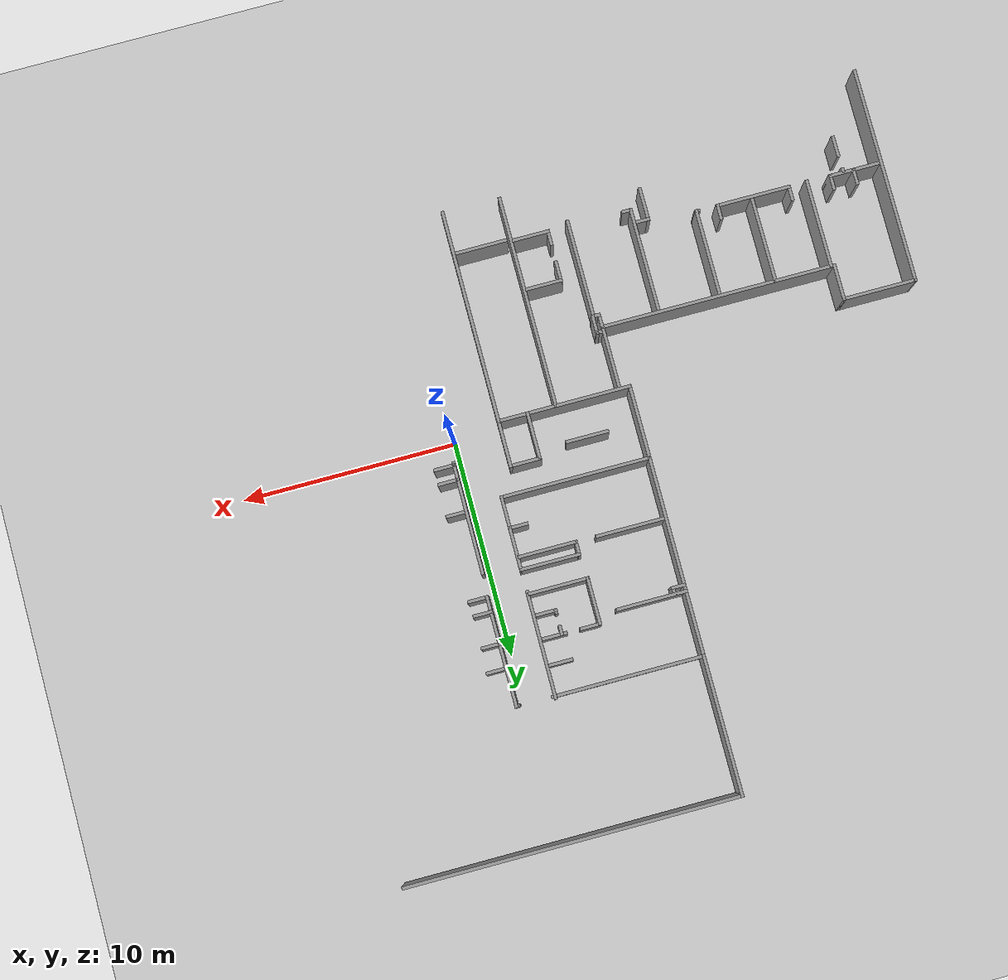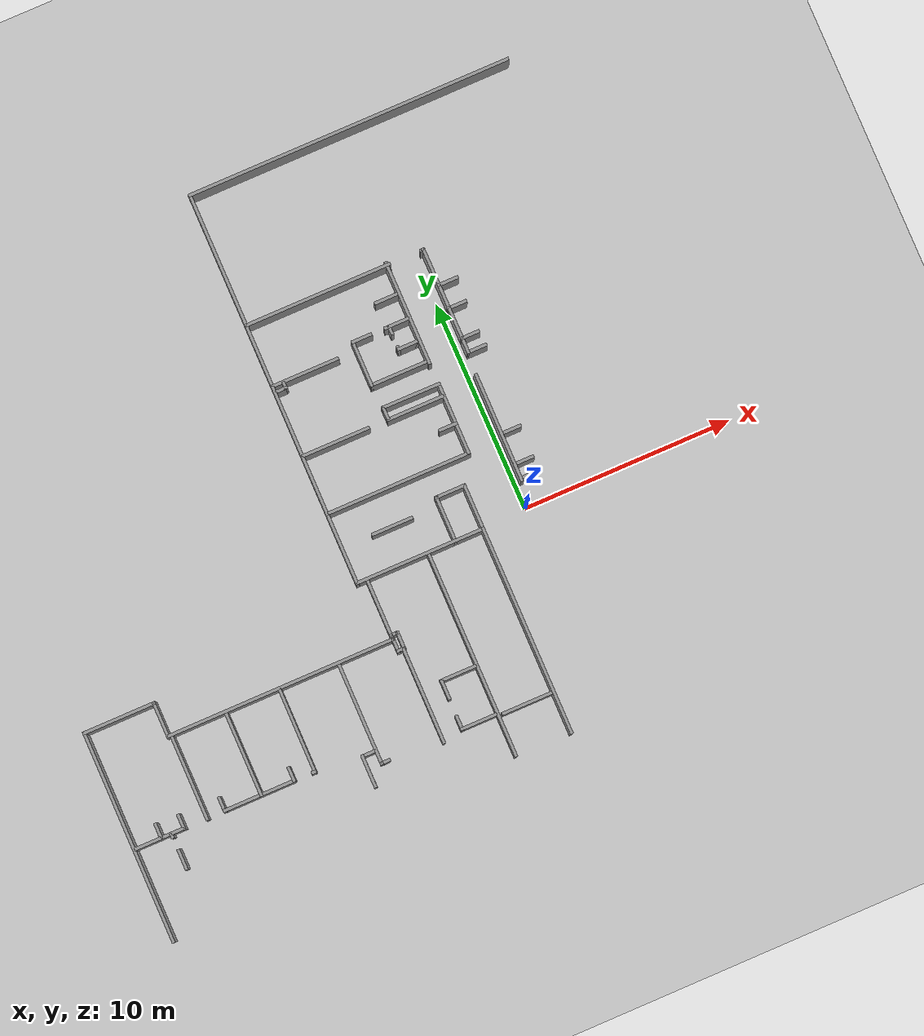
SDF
<sdf version="1.6">
 <world name="default">
  <model name="ground_plane">
   <static>1</static>
   <link name="link">
    <collision name="collision">
     <geometry><plane><normal>0 0 1</normal><size>100 100</size></plane></geometry>
     <surface>
      <contact><collide_bitmask>65535</collide_bitmask></contact>
      <friction><ode><mu>100</mu><mu2>50</mu2></ode></friction>
     </surface>
    </collision>
    <visual name="visual">
     <cast_shadows>0</cast_shadows>
     <geometry><plane><normal>0 0 1</normal><size>100 100</size></plane></geometry>
     <material>
      <script><uri>file://media/materials/scripts/gazebo.material</uri><name>Gazebo/Grey</name></script>
     </material>
    </visual>
   </link>
  </model>
  <model name="harnwell">
   <pose>0.907995 -0.1981 0 0 -0 0</pose>
   <link name="Wall_0">
    <collision name="Wall_0_Collision">
     <geometry><box><size>15.5704 0.15 2.5</size></box></geometry>
     <pose>0 0 1.25 0 -0 0</pose>
    </collision>
    <visual name="Wall_0_Visual">
     <pose>0 0 1.25 0 -0 0</pose>
     <geometry><box><size>15.5704 0.15 2.5</size></box></geometry>
     <material>
      <script><uri>file://media/materials/scripts/gazebo.material</uri><name>Gazebo/Grey</name></script>
      <ambient>1 1 1 1</ambient>
     </material>
     <meta><layer>0</layer></meta>
    </visual>
    <pose>-1.44871 18.8469 0 0 -0 0</pose>
   </link>
   <link name="Wall_10">
    <collision name="Wall_10_Collision">
     <geometry><box><size>4.47203 0.15 2.5</size></box></geometry>
     <pose>0 0 1.25 0 -0 0</pose>
    </collision>
    <visual name="Wall_10_Visual">
     <pose>0 0 1.25 0 -0 0</pose>
     <geometry><box><size>4.47203 0.15 2.5</size></box></geometry>
     <material>
      <script><uri>file://media/materials/scripts/gazebo.material</uri><name>Gazebo/Grey</name></script>
      <ambient>1 1 1 1</ambient>
     </material>
     <meta><layer>0</layer></meta>
    </visual>
    <pose>-0.551724 10.3258 0 0 -0 1.57386</pose>
   </link>
   <link name="Wall_11">
    <collision name="Wall_11_Collision">
     <geometry><box><size>0.25 0.15 2.5</size></box></geometry>
     <pose>0 0 1.25 0 -0 0</pose>
    </collision>
    <visual name="Wall_11_Visual">
     <pose>0 0 1.25 0 -0 0</pose>
     <geometry><box><size>0.25 0.15 2.5</size></box></geometry>
     <material>
      <script><uri>file://media/materials/scripts/gazebo.material</uri><name>Gazebo/Grey</name></script>
      <ambient>1 1 1 1</ambient>
     </material>
     <meta><layer>0</layer></meta>
    </visual>
    <pose>-0.60834 12.4868 0 0 -0 3.14159</pose>
   </link>
   <link name="Wall_110">
    <collision name="Wall_110_Collision">
     <geometry><box><size>1 0.15 2.5</size></box></geometry>
     <pose>0 0 1.25 0 -0 0</pose>
    </collision>
    <visual name="Wall_110_Visual">
     <pose>0 0 1.25 0 -0 0</pose>
     <geometry><box><size>1 0.15 2.5</size></box></geometry>
     <material>
      <script><uri>file://media/materials/scripts/gazebo.material</uri><name>Gazebo/Grey</name></script>
      <ambient>1 1 1 1</ambient>
     </material>
     <meta><layer>0</layer></meta>
    </visual>
    <pose>-0.181677 3.55575 0 0 -0 3.14159</pose>
   </link>
   <link name="Wall_112">
    <collision name="Wall_112_Collision">
     <geometry><box><size>1 0.15 2.5</size></box></geometry>
     <pose>0 0 1.25 0 -0 0</pose>
    </collision>
    <visual name="Wall_112_Visual">
     <pose>0 0 1.25 0 -0 0</pose>
     <geometry><box><size>1 0.15 2.5</size></box></geometry>
     <material>
      <script><uri>file://media/materials/scripts/gazebo.material</uri><name>Gazebo/Grey</name></script>
      <ambient>1 1 1 1</ambient>
     </material>
     <meta><layer>0</layer></meta>
    </visual>
    <pose>-0.199322 2.07356 0 0 -0 3.14159</pose>
   </link>
   <link name="Wall_114">
    <collision name="Wall_114_Collision">
     <geometry><box><size>0.96775 0.15 2.5</size></box></geometry>
     <pose>0 0 1.25 0 -0 0</pose>
    </collision>
    <visual name="Wall_114_Visual">
     <pose>0 0 1.25 0 -0 0</pose>
     <geometry><box><size>0.96775 0.15 2.5</size></box></geometry>
     <material>
      <script><uri>file://media/materials/scripts/gazebo.material</uri><name>Gazebo/Grey</name></script>
      <ambient>1 1 1 1</ambient>
     </material>
     <meta><layer>0</layer></meta>
    </visual>
    <pose>-0.165457 1.39716 0 0 -0 3.14159</pose>
   </link>
   <link name="Wall_12">
    <collision name="Wall_12_Collision">
     <geometry><box><size>0.25 0.15 2.5</size></box></geometry>
     <pose>0 0 1.25 0 -0 0</pose>
    </collision>
    <visual name="Wall_12_Visual">
     <pose>0 0 1.25 0 -0 0</pose>
     <geometry><box><size>0.25 0.15 2.5</size></box></geometry>
     <material>
      <script><uri>file://media/materials/scripts/gazebo.material</uri><name>Gazebo/Grey</name></script>
      <ambient>1 1 1 1</ambient>
     </material>
     <meta><layer>0</layer></meta>
    </visual>
    <pose>-0.60834 12.4868 0 0 -0 0</pose>
   </link>
   <link name="Wall_132">
    <collision name="Wall_132_Collision">
     <geometry><box><size>3.5 0.15 2.5</size></box></geometry>
     <pose>0 0 1.25 0 -0 0</pose>
    </collision>
    <visual name="Wall_132_Visual">
     <pose>0 0 1.25 0 -0 0</pose>
     <geometry><box><size>3.5 0.15 2.5</size></box></geometry>
     <material>
      <script><uri>file://media/materials/scripts/gazebo.material</uri><name>Gazebo/Grey</name></script>
      <ambient>1 1 1 1</ambient>
     </material>
     <meta><layer>0</layer></meta>
    </visual>
    <pose>-9.16586 1.67152 0 0 -0 -1.5708</pose>
   </link>
   <link name="Wall_133">
    <collision name="Wall_133_Collision">
     <geometry><box><size>6.25 0.15 2.5</size></box></geometry>
     <pose>0 0 1.25 0 -0 0</pose>
    </collision>
    <visual name="Wall_133_Visual">
     <pose>0 0 1.25 0 -0 0</pose>
     <geometry><box><size>6.25 0.15 2.5</size></box></geometry>
     <material>
      <script><uri>file://media/materials/scripts/gazebo.material</uri><name>Gazebo/Grey</name></script>
      <ambient>1 1 1 1</ambient>
     </material>
     <meta><layer>0</layer></meta>
    </visual>
    <pose>-6.11586 -0.003478 0 0 -0 0</pose>
   </link>
   <link name="Wall_135">
    <collision name="Wall_135_Collision">
     <geometry><box><size>2.25 0.15 2.5</size></box></geometry>
     <pose>0 0 1.25 0 -0 0</pose>
    </collision>
    <visual name="Wall_135_Visual">
     <pose>0 0 1.25 0 -0 0</pose>
     <geometry><box><size>2.25 0.15 2.5</size></box></geometry>
     <material>
      <script><uri>file://media/materials/scripts/gazebo.material</uri><name>Gazebo/Grey</name></script>
      <ambient>1 1 1 1</ambient>
     </material>
     <meta><layer>0</layer></meta>
    </visual>
    <pose>-3.06586 1.04652 0 0 -0 1.5708</pose>
   </link>
   <link name="Wall_136">
    <collision name="Wall_136_Collision">
     <geometry><box><size>1.5 0.15 2.5</size></box></geometry>
     <pose>0 0 1.25 0 -0 0</pose>
    </collision>
    <visual name="Wall_136_Visual">
     <pose>0 0 1.25 0 -0 0</pose>
     <geometry><box><size>1.5 0.15 2.5</size></box></geometry>
     <material>
      <script><uri>file://media/materials/scripts/gazebo.material</uri><name>Gazebo/Grey</name></script>
      <ambient>1 1 1 1</ambient>
     </material>
     <meta><layer>0</layer></meta>
    </visual>
    <pose>-3.74086 2.09652 0 0 -0 3.14159</pose>
   </link>
   <link name="Wall_137">
    <collision name="Wall_137_Collision">
     <geometry><box><size>2.25 0.15 2.5</size></box></geometry>
     <pose>0 0 1.25 0 -0 0</pose>
    </collision>
    <visual name="Wall_137_Visual">
     <pose>0 0 1.25 0 -0 0</pose>
     <geometry><box><size>2.25 0.15 2.5</size></box></geometry>
     <material>
      <script><uri>file://media/materials/scripts/gazebo.material</uri><name>Gazebo/Grey</name></script>
      <ambient>1 1 1 1</ambient>
     </material>
     <meta><layer>0</layer></meta>
    </visual>
    <pose>-4.41586 1.04652 0 0 -0 -1.5708</pose>
   </link>
   <link name="Wall_139">
    <collision name="Wall_139_Collision">
     <geometry><box><size>2 0.15 2.5</size></box></geometry>
     <pose>0 0 1.25 0 -0 0</pose>
    </collision>
    <visual name="Wall_139_Visual">
     <pose>0 0 1.25 0 -0 0</pose>
     <geometry><box><size>2 0.15 2.5</size></box></geometry>
     <material>
      <script><uri>file://media/materials/scripts/gazebo.material</uri><name>Gazebo/Grey</name></script>
      <ambient>1 1 1 1</ambient>
     </material>
     <meta><layer>0</layer></meta>
    </visual>
    <pose>-6.7235 1.70166 0 0 -0 0</pose>
   </link>
   <link name="Wall_21">
    <collision name="Wall_21_Collision">
     <geometry><box><size>5 0.15 2.5</size></box></geometry>
     <pose>0 0 1.25 0 -0 0</pose>
    </collision>
    <visual name="Wall_21_Visual">
     <pose>0 0 1.25 0 -0 0</pose>
     <geometry><box><size>5 0.15 2.5</size></box></geometry>
     <material>
      <script><uri>file://media/materials/scripts/gazebo.material</uri><name>Gazebo/Grey</name></script>
      <ambient>1 1 1 1</ambient>
     </material>
     <meta><layer>0</layer></meta>
    </visual>
    <pose>-2.32775 10.1553 0 0 -0 1.5708</pose>
   </link>
   <link name="Wall_23">
    <collision name="Wall_23_Collision">
     <geometry><box><size>3.5 0.15 2.5</size></box></geometry>
     <pose>0 0 1.25 0 -0 0</pose>
    </collision>
    <visual name="Wall_23_Visual">
     <pose>0 0 1.25 0 -0 0</pose>
     <geometry><box><size>3.5 0.15 2.5</size></box></geometry>
     <material>
      <script><uri>file://media/materials/scripts/gazebo.material</uri><name>Gazebo/Grey</name></script>
      <ambient>1 1 1 1</ambient>
     </material>
     <meta><layer>0</layer></meta>
    </visual>
    <pose>-2.31586 5.02152 0 0 -0 -1.5708</pose>
   </link>
   <link name="Wall_24">
    <collision name="Wall_24_Collision">
     <geometry><box><size>7 0.15 2.5</size></box></geometry>
     <pose>0 0 1.25 0 -0 0</pose>
    </collision>
    <visual name="Wall_24_Visual">
     <pose>0 0 1.25 0 -0 0</pose>
     <geometry><box><size>7 0.15 2.5</size></box></geometry>
     <material>
      <script><uri>file://media/materials/scripts/gazebo.material</uri><name>Gazebo/Grey</name></script>
      <ambient>1 1 1 1</ambient>
     </material>
     <meta><layer>0</layer></meta>
    </visual>
    <pose>-5.74086 3.34652 0 0 -0 3.14159</pose>
   </link>
   <link name="Wall_242">
    <collision name="Wall_242_Collision">
     <geometry><box><size>10.1583 0.15 2.5</size></box></geometry>
     <pose>0 0 1.25 0 -0 0</pose>
    </collision>
    <visual name="Wall_242_Visual">
     <pose>0 0 1.25 0 -0 0</pose>
     <geometry><box><size>10.1583 0.15 2.5</size></box></geometry>
     <material>
      <script><uri>file://media/materials/scripts/gazebo.material</uri><name>Gazebo/Grey</name></script>
      <ambient>1 1 1 1</ambient>
     </material>
     <meta><layer>0</layer></meta>
    </visual>
    <pose>-22.8967 -6.32577 0 0 -0 1.57014</pose>
   </link>
   <link name="Wall_244">
    <collision name="Wall_244_Collision">
     <geometry><box><size>3.5 0.15 2.5</size></box></geometry>
     <pose>0 0 1.25 0 -0 0</pose>
    </collision>
    <visual name="Wall_244_Visual">
     <pose>0 0 1.25 0 -0 0</pose>
     <geometry><box><size>3.5 0.15 2.5</size></box></geometry>
     <material>
      <script><uri>file://media/materials/scripts/gazebo.material</uri><name>Gazebo/Grey</name></script>
      <ambient>1 1 1 1</ambient>
     </material>
     <meta><layer>0</layer></meta>
    </visual>
    <pose>-21.2184 -1.32162 0 0 -0 0</pose>
   </link>
   <link name="Wall_245">
    <collision name="Wall_245_Collision">
     <geometry><box><size>1.75 0.15 2.5</size></box></geometry>
     <pose>0 0 1.25 0 -0 0</pose>
    </collision>
    <visual name="Wall_245_Visual">
     <pose>0 0 1.25 0 -0 0</pose>
     <geometry><box><size>1.75 0.15 2.5</size></box></geometry>
     <material>
      <script><uri>file://media/materials/scripts/gazebo.material</uri><name>Gazebo/Grey</name></script>
      <ambient>1 1 1 1</ambient>
     </material>
     <meta><layer>0</layer></meta>
    </visual>
    <pose>-19.5434 -2.12162 0 0 -0 -1.5708</pose>
   </link>
   <link name="Wall_247">
    <collision name="Wall_247_Collision">
     <geometry><box><size>11 0.15 2.5</size></box></geometry>
     <pose>0 0 1.25 0 -0 0</pose>
    </collision>
    <visual name="Wall_247_Visual">
     <pose>0 0 1.25 0 -0 0</pose>
     <geometry><box><size>11 0.15 2.5</size></box></geometry>
     <material>
      <script><uri>file://media/materials/scripts/gazebo.material</uri><name>Gazebo/Grey</name></script>
      <ambient>1 1 1 1</ambient>
     </material>
     <meta><layer>0</layer></meta>
    </visual>
    <pose>-14.1184 -2.92162 0 0 -0 0</pose>
   </link>
   <link name="Wall_248">
    <collision name="Wall_248_Collision">
     <geometry><box><size>3 0.15 2.5</size></box></geometry>
     <pose>0 0 1.25 0 -0 0</pose>
    </collision>
    <visual name="Wall_248_Visual">
     <pose>0 0 1.25 0 -0 0</pose>
     <geometry><box><size>3 0.15 2.5</size></box></geometry>
     <material>
      <script><uri>file://media/materials/scripts/gazebo.material</uri><name>Gazebo/Grey</name></script>
      <ambient>1 1 1 1</ambient>
     </material>
     <meta><layer>0</layer></meta>
    </visual>
    <pose>-8.6934 -1.49662 0 0 -0 1.5708</pose>
   </link>
   <link name="Wall_25">
    <collision name="Wall_25_Collision">
     <geometry><box><size>9.30039 0.15 2.5</size></box></geometry>
     <pose>0 0 1.25 0 -0 0</pose>
    </collision>
    <visual name="Wall_25_Visual">
     <pose>0 0 1.25 0 -0 0</pose>
     <geometry><box><size>9.30039 0.15 2.5</size></box></geometry>
     <material>
      <script><uri>file://media/materials/scripts/gazebo.material</uri><name>Gazebo/Grey</name></script>
      <ambient>1 1 1 1</ambient>
     </material>
     <meta><layer>0</layer></meta>
    </visual>
    <pose>-9.15735 7.92171 0 0 -0 1.56894</pose>
   </link>
   <link name="Wall_256">
    <collision name="Wall_256_Collision">
     <geometry><box><size>10 0.15 2.5</size></box></geometry>
     <pose>0 0 1.25 0 -0 0</pose>
    </collision>
    <visual name="Wall_256_Visual">
     <pose>0 0 1.25 0 -0 0</pose>
     <geometry><box><size>10 0.15 2.5</size></box></geometry>
     <material>
      <script><uri>file://media/materials/scripts/gazebo.material</uri><name>Gazebo/Grey</name></script>
      <ambient>1 1 1 1</ambient>
     </material>
     <meta><layer>0</layer></meta>
    </visual>
    <pose>-3.06586 -4.92848 0 0 -0 -1.5708</pose>
   </link>
   <link name="Wall_263">
    <collision name="Wall_263_Collision">
     <geometry><box><size>2.5 0.15 2.5</size></box></geometry>
     <pose>0 0 1.25 0 -0 0</pose>
    </collision>
    <visual name="Wall_263_Visual">
     <pose>0 0 1.25 0 -0 0</pose>
     <geometry><box><size>2.5 0.15 2.5</size></box></geometry>
     <material>
      <script><uri>file://media/materials/scripts/gazebo.material</uri><name>Gazebo/Grey</name></script>
      <ambient>1 1 1 1</ambient>
     </material>
     <meta><layer>0</layer></meta>
    </visual>
    <pose>-4.31402 -7.88999 0 0 -0 3.14154</pose>
   </link>
   <link name="Wall_27">
    <collision name="Wall_27_Collision">
     <geometry><box><size>1.25 0.15 2.5</size></box></geometry>
     <pose>0 0 1.25 0 -0 0</pose>
    </collision>
    <visual name="Wall_27_Visual">
     <pose>0 0 1.25 0 -0 0</pose>
     <geometry><box><size>1.25 0.15 2.5</size></box></geometry>
     <material>
      <script><uri>file://media/materials/scripts/gazebo.material</uri><name>Gazebo/Grey</name></script>
      <ambient>1 1 1 1</ambient>
     </material>
     <meta><layer>0</layer></meta>
    </visual>
    <pose>-2.90158 11.1274 0 0 -0 3.14159</pose>
   </link>
   <link name="Wall_271">
    <collision name="Wall_271_Collision">
     <geometry><box><size>0.438217 0.15 2.5</size></box></geometry>
     <pose>0 0 1.25 0 -0 0</pose>
    </collision>
    <visual name="Wall_271_Visual">
     <pose>0 0 1.25 0 -0 0</pose>
     <geometry><box><size>0.438217 0.15 2.5</size></box></geometry>
     <material>
      <script><uri>file://media/materials/scripts/gazebo.material</uri><name>Gazebo/Grey</name></script>
      <ambient>1 1 1 1</ambient>
     </material>
     <meta><layer>0</layer></meta>
    </visual>
    <pose>-8.53215 -2.73173 0 0 -0 3.14026</pose>
   </link>
   <link name="Wall_274">
    <collision name="Wall_274_Collision">
     <geometry><box><size>0.912293 0.15 2.5</size></box></geometry>
     <pose>0 0 1.25 0 -0 0</pose>
    </collision>
    <visual name="Wall_274_Visual">
     <pose>0 0 1.25 0 -0 0</pose>
     <geometry><box><size>0.912293 0.15 2.5</size></box></geometry>
     <material>
      <script><uri>file://media/materials/scripts/gazebo.material</uri><name>Gazebo/Grey</name></script>
      <ambient>1 1 1 1</ambient>
     </material>
     <meta><layer>0</layer></meta>
    </visual>
    <pose>-8.388 -3.11293 0 0 -0 -1.5708</pose>
   </link>
   <link name="Wall_275">
    <collision name="Wall_275_Collision">
     <geometry><box><size>0.44 0.15 2.5</size></box></geometry>
     <pose>0 0 1.25 0 -0 0</pose>
    </collision>
    <visual name="Wall_275_Visual">
     <pose>0 0 1.25 0 -0 0</pose>
     <geometry><box><size>0.44 0.15 2.5</size></box></geometry>
     <material>
      <script><uri>file://media/materials/scripts/gazebo.material</uri><name>Gazebo/Grey</name></script>
      <ambient>1 1 1 1</ambient>
     </material>
     <meta><layer>0</layer></meta>
    </visual>
    <pose>-8.53299 -3.49393 0 0 -0 3.14159</pose>
   </link>
   <link name="Wall_276">
    <collision name="Wall_276_Collision">
     <geometry><box><size>0.69926 0.15 2.5</size></box></geometry>
     <pose>0 0 1.25 0 -0 0</pose>
    </collision>
    <visual name="Wall_276_Visual">
     <pose>0 0 1.25 0 -0 0</pose>
     <geometry><box><size>0.69926 0.15 2.5</size></box></geometry>
     <material>
      <script><uri>file://media/materials/scripts/gazebo.material</uri><name>Gazebo/Grey</name></script>
      <ambient>1 1 1 1</ambient>
     </material>
     <meta><layer>0</layer></meta>
    </visual>
    <pose>-8.67799 -3.21943 0 0 -0 1.5708</pose>
   </link>
   <link name="Wall_279">
    <collision name="Wall_279_Collision">
     <geometry><box><size>4.615 0.15 2.5</size></box></geometry>
     <pose>0 0 1.25 0 -0 0</pose>
    </collision>
    <visual name="Wall_279_Visual">
     <pose>0 0 1.25 0 -0 0</pose>
     <geometry><box><size>4.615 0.15 2.5</size></box></geometry>
     <material>
      <script><uri>file://media/materials/scripts/gazebo.material</uri><name>Gazebo/Grey</name></script>
      <ambient>1 1 1 1</ambient>
     </material>
     <meta><layer>0</layer></meta>
    </visual>
    <pose>-8.42799 -5.76143 0 0 -0 1.5708</pose>
   </link>
   <link name="Wall_282">
    <collision name="Wall_282_Collision">
     <geometry><box><size>9.92312 0.15 2.5</size></box></geometry>
     <pose>0 0 1.25 0 -0 0</pose>
    </collision>
    <visual name="Wall_282_Visual">
     <pose>0 0 1.25 0 -0 0</pose>
     <geometry><box><size>9.92312 0.15 2.5</size></box></geometry>
     <material>
      <script><uri>file://media/materials/scripts/gazebo.material</uri><name>Gazebo/Grey</name></script>
      <ambient>1 1 1 1</ambient>
     </material>
     <meta><layer>0</layer></meta>
    </visual>
    <pose>-5.729 -4.92143 0 0 -0 -1.5708</pose>
   </link>
   <link name="Wall_284">
    <collision name="Wall_284_Collision">
     <geometry><box><size>1.75 0.15 2.5</size></box></geometry>
     <pose>0 0 1.25 0 -0 0</pose>
    </collision>
    <visual name="Wall_284_Visual">
     <pose>0 0 1.25 0 -0 0</pose>
     <geometry><box><size>1.75 0.15 2.5</size></box></geometry>
     <material>
      <script><uri>file://media/materials/scripts/gazebo.material</uri><name>Gazebo/Grey</name></script>
      <ambient>1 1 1 1</ambient>
     </material>
     <meta><layer>0</layer></meta>
    </visual>
    <pose>-6.63514 -5.46632 0 0 -0 0</pose>
   </link>
   <link name="Wall_286">
    <collision name="Wall_286_Collision">
     <geometry><box><size>1 0.15 2.5</size></box></geometry>
     <pose>0 0 1.25 0 -0 0</pose>
    </collision>
    <visual name="Wall_286_Visual">
     <pose>0 0 1.25 0 -0 0</pose>
     <geometry><box><size>1 0.15 2.5</size></box></geometry>
     <material>
      <script><uri>file://media/materials/scripts/gazebo.material</uri><name>Gazebo/Grey</name></script>
      <ambient>1 1 1 1</ambient>
     </material>
     <meta><layer>0</layer></meta>
    </visual>
    <pose>-7.43514 -5.89132 0 0 -0 -1.5708</pose>
   </link>
   <link name="Wall_288">
    <collision name="Wall_288_Collision">
     <geometry><box><size>0.75 0.15 2.5</size></box></geometry>
     <pose>0 0 1.25 0 -0 0</pose>
    </collision>
    <visual name="Wall_288_Visual">
     <pose>0 0 1.25 0 -0 0</pose>
     <geometry><box><size>0.75 0.15 2.5</size></box></geometry>
     <material>
      <script><uri>file://media/materials/scripts/gazebo.material</uri><name>Gazebo/Grey</name></script>
      <ambient>1 1 1 1</ambient>
     </material>
     <meta><layer>0</layer></meta>
    </visual>
    <pose>-7.45254 -7.49502 0 0 -0 -1.5708</pose>
   </link>
   <link name="Wall_289">
    <collision name="Wall_289_Collision">
     <geometry><box><size>1.75 0.15 2.5</size></box></geometry>
     <pose>0 0 1.25 0 -0 0</pose>
    </collision>
    <visual name="Wall_289_Visual">
     <pose>0 0 1.25 0 -0 0</pose>
     <geometry><box><size>1.75 0.15 2.5</size></box></geometry>
     <material>
      <script><uri>file://media/materials/scripts/gazebo.material</uri><name>Gazebo/Grey</name></script>
      <ambient>1 1 1 1</ambient>
     </material>
     <meta><layer>0</layer></meta>
    </visual>
    <pose>-6.65254 -7.79502 0 0 -0 0</pose>
   </link>
   <link name="Wall_29">
    <collision name="Wall_29_Collision">
     <geometry><box><size>1.25 0.15 2.5</size></box></geometry>
     <pose>0 0 1.25 0 -0 0</pose>
    </collision>
    <visual name="Wall_29_Visual">
     <pose>0 0 1.25 0 -0 0</pose>
     <geometry><box><size>1.25 0.15 2.5</size></box></geometry>
     <material>
      <script><uri>file://media/materials/scripts/gazebo.material</uri><name>Gazebo/Grey</name></script>
      <ambient>1 1 1 1</ambient>
     </material>
     <meta><layer>0</layer></meta>
    </visual>
    <pose>-2.95645 9.92774 0 0 -0 0</pose>
   </link>
   <link name="Wall_306">
    <collision name="Wall_306_Collision">
     <geometry><box><size>5 0.15 2.5</size></box></geometry>
     <pose>0 0 1.25 0 -0 0</pose>
    </collision>
    <visual name="Wall_306_Visual">
     <pose>0 0 1.25 0 -0 0</pose>
     <geometry><box><size>5 0.15 2.5</size></box></geometry>
     <material>
      <script><uri>file://media/materials/scripts/gazebo.material</uri><name>Gazebo/Grey</name></script>
      <ambient>1 1 1 1</ambient>
     </material>
     <meta><layer>0</layer></meta>
    </visual>
    <pose>-11.3319 -5.34809 0 0 -0 -1.5708</pose>
   </link>
   <link name="Wall_307">
    <collision name="Wall_307_Collision">
     <geometry><box><size>0.5 0.15 2.5</size></box></geometry>
     <pose>0 0 1.25 0 -0 0</pose>
    </collision>
    <visual name="Wall_307_Visual">
     <pose>0 0 1.25 0 -0 0</pose>
     <geometry><box><size>0.5 0.15 2.5</size></box></geometry>
     <material>
      <script><uri>file://media/materials/scripts/gazebo.material</uri><name>Gazebo/Grey</name></script>
      <ambient>1 1 1 1</ambient>
     </material>
     <meta><layer>0</layer></meta>
    </visual>
    <pose>-11.157 -7.77301 0 0 -0 0.000454</pose>
   </link>
   <link name="Wall_326">
    <collision name="Wall_326_Collision">
     <geometry><box><size>0.75 0.15 2.5</size></box></geometry>
     <pose>0 0 1.25 0 -0 0</pose>
    </collision>
    <visual name="Wall_326_Visual">
     <pose>0 0 1.25 0 -0 0</pose>
     <geometry><box><size>0.75 0.15 2.5</size></box></geometry>
     <material>
      <script><uri>file://media/materials/scripts/gazebo.material</uri><name>Gazebo/Grey</name></script>
      <ambient>1 1 1 1</ambient>
     </material>
     <meta><layer>0</layer></meta>
    </visual>
    <pose>-11.6859 -7.15505 0 0 -0 -0.000419</pose>
   </link>
   <link name="Wall_328">
    <collision name="Wall_328_Collision">
     <geometry><box><size>1.58125 0.15 2.5</size></box></geometry>
     <pose>0 0 1.25 0 -0 0</pose>
    </collision>
    <visual name="Wall_328_Visual">
     <pose>0 0 1.25 0 -0 0</pose>
     <geometry><box><size>1.58125 0.15 2.5</size></box></geometry>
     <material>
      <script><uri>file://media/materials/scripts/gazebo.material</uri><name>Gazebo/Grey</name></script>
      <ambient>1 1 1 1</ambient>
     </material>
     <meta><layer>0</layer></meta>
    </visual>
    <pose>-11.986 -7.87043 0 0 -0 -1.5708</pose>
   </link>
   <link name="Wall_33">
    <collision name="Wall_33_Collision">
     <geometry><box><size>0.46533 0.15 2.5</size></box></geometry>
     <pose>0 0 1.25 0 -0 0</pose>
    </collision>
    <visual name="Wall_33_Visual">
     <pose>0 0 1.25 0 -0 0</pose>
     <geometry><box><size>0.46533 0.15 2.5</size></box></geometry>
     <material>
      <script><uri>file://media/materials/scripts/gazebo.material</uri><name>Gazebo/Grey</name></script>
      <ambient>1 1 1 1</ambient>
     </material>
     <meta><layer>0</layer></meta>
    </visual>
    <pose>-3.33063 9.75442 0 0 -0 1.5708</pose>
   </link>
   <link name="Wall_333">
    <collision name="Wall_333_Collision">
     <geometry><box><size>4.10387 0.15 2.5</size></box></geometry>
     <pose>0 0 1.25 0 -0 0</pose>
    </collision>
    <visual name="Wall_333_Visual">
     <pose>0 0 1.25 0 -0 0</pose>
     <geometry><box><size>4.10387 0.15 2.5</size></box></geometry>
     <material>
      <script><uri>file://media/materials/scripts/gazebo.material</uri><name>Gazebo/Grey</name></script>
      <ambient>1 1 1 1</ambient>
     </material>
     <meta><layer>0</layer></meta>
    </visual>
    <pose>-14.1885 -4.96593 0 0 -0 1.56953</pose>
   </link>
   <link name="Wall_335">
    <collision name="Wall_335_Collision">
     <geometry><box><size>0.25 0.15 2.5</size></box></geometry>
     <pose>0 0 1.25 0 -0 0</pose>
    </collision>
    <visual name="Wall_335_Visual">
     <pose>0 0 1.25 0 -0 0</pose>
     <geometry><box><size>0.25 0.15 2.5</size></box></geometry>
     <material>
      <script><uri>file://media/materials/scripts/gazebo.material</uri><name>Gazebo/Grey</name></script>
      <ambient>1 1 1 1</ambient>
     </material>
     <meta><layer>0</layer></meta>
    </visual>
    <pose>-14.241 -6.94293 0 0 -0 3.14159</pose>
   </link>
   <link name="Wall_337">
    <collision name="Wall_337_Collision">
     <geometry><box><size>3.5 0.15 2.5</size></box></geometry>
     <pose>0 0 1.25 0 -0 0</pose>
    </collision>
    <visual name="Wall_337_Visual">
     <pose>0 0 1.25 0 -0 0</pose>
     <geometry><box><size>3.5 0.15 2.5</size></box></geometry>
     <material>
      <script><uri>file://media/materials/scripts/gazebo.material</uri><name>Gazebo/Grey</name></script>
      <ambient>1 1 1 1</ambient>
     </material>
     <meta><layer>0</layer></meta>
    </visual>
    <pose>-16.8647 -6.93889 0 0 -0 3.14159</pose>
   </link>
   <link name="Wall_338">
    <collision name="Wall_338_Collision">
     <geometry><box><size>0.75 0.15 2.5</size></box></geometry>
     <pose>0 0 1.25 0 -0 0</pose>
    </collision>
    <visual name="Wall_338_Visual">
     <pose>0 0 1.25 0 -0 0</pose>
     <geometry><box><size>0.75 0.15 2.5</size></box></geometry>
     <material>
      <script><uri>file://media/materials/scripts/gazebo.material</uri><name>Gazebo/Grey</name></script>
      <ambient>1 1 1 1</ambient>
     </material>
     <meta><layer>0</layer></meta>
    </visual>
    <pose>-18.5397 -6.63889 0 0 -0 1.5708</pose>
   </link>
   <link name="Wall_340">
    <collision name="Wall_340_Collision">
     <geometry><box><size>0.75 0.15 2.5</size></box></geometry>
     <pose>0 0 1.25 0 -0 0</pose>
    </collision>
    <visual name="Wall_340_Visual">
     <pose>0 0 1.25 0 -0 0</pose>
     <geometry><box><size>0.75 0.15 2.5</size></box></geometry>
     <material>
      <script><uri>file://media/materials/scripts/gazebo.material</uri><name>Gazebo/Grey</name></script>
      <ambient>1 1 1 1</ambient>
     </material>
     <meta><layer>0</layer></meta>
    </visual>
    <pose>-15.1897 -6.63889 0 0 -0 1.5708</pose>
   </link>
   <link name="Wall_342">
    <collision name="Wall_342_Collision">
     <geometry><box><size>4.149 0.15 2.5</size></box></geometry>
     <pose>0 0 1.25 0 -0 0</pose>
    </collision>
    <visual name="Wall_342_Visual">
     <pose>0 0 1.25 0 -0 0</pose>
     <geometry><box><size>4.149 0.15 2.5</size></box></geometry>
     <material>
      <script><uri>file://media/materials/scripts/gazebo.material</uri><name>Gazebo/Grey</name></script>
      <ambient>1 1 1 1</ambient>
     </material>
     <meta><layer>0</layer></meta>
    </visual>
    <pose>-16.7812 -4.93469 0 0 -0 1.5708</pose>
   </link>
   <link name="Wall_344">
    <collision name="Wall_344_Collision">
     <geometry><box><size>4.159 0.15 2.5</size></box></geometry>
     <pose>0 0 1.25 0 -0 0</pose>
    </collision>
    <visual name="Wall_344_Visual">
     <pose>0 0 1.25 0 -0 0</pose>
     <geometry><box><size>4.159 0.15 2.5</size></box></geometry>
     <material>
      <script><uri>file://media/materials/scripts/gazebo.material</uri><name>Gazebo/Grey</name></script>
      <ambient>1 1 1 1</ambient>
     </material>
     <meta><layer>0</layer></meta>
    </visual>
    <pose>-19.3952 -4.95553 0 0 -0 1.5708</pose>
   </link>
   <link name="Wall_346">
    <collision name="Wall_346_Collision">
     <geometry><box><size>2.5 0.15 2.5</size></box></geometry>
     <pose>0 0 1.25 0 -0 0</pose>
    </collision>
    <visual name="Wall_346_Visual">
     <pose>0 0 1.25 0 -0 0</pose>
     <geometry><box><size>2.5 0.15 2.5</size></box></geometry>
     <material>
      <script><uri>file://media/materials/scripts/gazebo.material</uri><name>Gazebo/Grey</name></script>
      <ambient>1 1 1 1</ambient>
     </material>
     <meta><layer>0</layer></meta>
    </visual>
    <pose>-21.6762 -6.93579 0 0 -0 0</pose>
   </link>
   <link name="Wall_347">
    <collision name="Wall_347_Collision">
     <geometry><box><size>0.75 0.15 2.5</size></box></geometry>
     <pose>0 0 1.25 0 -0 0</pose>
    </collision>
    <visual name="Wall_347_Visual">
     <pose>0 0 1.25 0 -0 0</pose>
     <geometry><box><size>0.75 0.15 2.5</size></box></geometry>
     <material>
      <script><uri>file://media/materials/scripts/gazebo.material</uri><name>Gazebo/Grey</name></script>
      <ambient>1 1 1 1</ambient>
     </material>
     <meta><layer>0</layer></meta>
    </visual>
    <pose>-20.5012 -6.63579 0 0 -0 1.5708</pose>
   </link>
   <link name="Wall_349">
    <collision name="Wall_349_Collision">
     <geometry><box><size>0.75 0.15 2.5</size></box></geometry>
     <pose>0 0 1.25 0 -0 0</pose>
    </collision>
    <visual name="Wall_349_Visual">
     <pose>0 0 1.25 0 -0 0</pose>
     <geometry><box><size>0.75 0.15 2.5</size></box></geometry>
     <material>
      <script><uri>file://media/materials/scripts/gazebo.material</uri><name>Gazebo/Grey</name></script>
      <ambient>1 1 1 1</ambient>
     </material>
     <meta><layer>0</layer></meta>
    </visual>
    <pose>-21.5885 -6.59756 0 0 -0 -1.5708</pose>
   </link>
   <link name="Wall_35">
    <collision name="Wall_35_Collision">
     <geometry><box><size>0.257742 0.15 2.5</size></box></geometry>
     <pose>0 0 1.25 0 -0 0</pose>
    </collision>
    <visual name="Wall_35_Visual">
     <pose>0 0 1.25 0 -0 0</pose>
     <geometry><box><size>0.257742 0.15 2.5</size></box></geometry>
     <material>
      <script><uri>file://media/materials/scripts/gazebo.material</uri><name>Gazebo/Grey</name></script>
      <ambient>1 1 1 1</ambient>
     </material>
     <meta><layer>0</layer></meta>
    </visual>
    <pose>-3.33832 8.88534 0 0 -0 -1.5708</pose>
   </link>
   <link name="Wall_351">
    <collision name="Wall_351_Collision">
     <geometry><box><size>0.25 0.15 2.5</size></box></geometry>
     <pose>0 0 1.25 0 -0 0</pose>
    </collision>
    <visual name="Wall_351_Visual">
     <pose>0 0 1.25 0 -0 0</pose>
     <geometry><box><size>0.25 0.15 2.5</size></box></geometry>
     <material>
      <script><uri>file://media/materials/scripts/gazebo.material</uri><name>Gazebo/Grey</name></script>
      <ambient>1 1 1 1</ambient>
     </material>
     <meta><layer>0</layer></meta>
    </visual>
    <pose>-21.1161 -7.03311 0 0 -0 1.5708</pose>
   </link>
   <link name="Wall_353">
    <collision name="Wall_353_Collision">
     <geometry><box><size>0.996089 0.15 2.5</size></box></geometry>
     <pose>0 0 1.25 0 -0 0</pose>
    </collision>
    <visual name="Wall_353_Visual">
     <pose>0 0 1.25 0 -0 0</pose>
     <geometry><box><size>0.996089 0.15 2.5</size></box></geometry>
     <material>
      <script><uri>file://media/materials/scripts/gazebo.material</uri><name>Gazebo/Grey</name></script>
      <ambient>1 1 1 1</ambient>
     </material>
     <meta><layer>0</layer></meta>
    </visual>
    <pose>-21.1001 -8.18488 0 0 -0 -1.57048</pose>
   </link>
   <link name="Wall_36">
    <collision name="Wall_36_Collision">
     <geometry><box><size>1 0.15 2.5</size></box></geometry>
     <pose>0 0 1.25 0 -0 0</pose>
    </collision>
    <visual name="Wall_36_Visual">
     <pose>0 0 1.25 0 -0 0</pose>
     <geometry><box><size>1 0.15 2.5</size></box></geometry>
     <material>
      <script><uri>file://media/materials/scripts/gazebo.material</uri><name>Gazebo/Grey</name></script>
      <ambient>1 1 1 1</ambient>
     </material>
     <meta><layer>0</layer></meta>
    </visual>
    <pose>-2.91332 8.8315 0 0 -0 0</pose>
   </link>
   <link name="Wall_37">
    <collision name="Wall_37_Collision">
     <geometry><box><size>0.15 0.15 2.5</size></box></geometry>
     <pose>0 0 1.25 0 -0 0</pose>
    </collision>
    <visual name="Wall_37_Visual">
     <pose>0 0 1.25 0 -0 0</pose>
     <geometry><box><size>0.15 0.15 2.5</size></box></geometry>
     <material>
      <script><uri>file://media/materials/scripts/gazebo.material</uri><name>Gazebo/Grey</name></script>
      <ambient>1 1 1 1</ambient>
     </material>
     <meta><layer>0</layer></meta>
    </visual>
    <pose>-2.48832 8.8315 0 0 -0 0</pose>
   </link>
   <link name="Wall_40">
    <collision name="Wall_40_Collision">
     <geometry><box><size>2.84032 0.15 2.5</size></box></geometry>
     <pose>0 0 1.25 0 -0 0</pose>
    </collision>
    <visual name="Wall_40_Visual">
     <pose>0 0 1.25 0 -0 0</pose>
     <geometry><box><size>2.84032 0.15 2.5</size></box></geometry>
     <material>
      <script><uri>file://media/materials/scripts/gazebo.material</uri><name>Gazebo/Grey</name></script>
      <ambient>1 1 1 1</ambient>
     </material>
     <meta><layer>0</layer></meta>
    </visual>
    <pose>-3.73869 7.83309 0 0 -0 0</pose>
   </link>
   <link name="Wall_42">
    <collision name="Wall_42_Collision">
     <geometry><box><size>2.25 0.15 2.5</size></box></geometry>
     <pose>0 0 1.25 0 -0 0</pose>
    </collision>
    <visual name="Wall_42_Visual">
     <pose>0 0 1.25 0 -0 0</pose>
     <geometry><box><size>2.25 0.15 2.5</size></box></geometry>
     <material>
      <script><uri>file://media/materials/scripts/gazebo.material</uri><name>Gazebo/Grey</name></script>
      <ambient>1 1 1 1</ambient>
     </material>
     <meta><layer>0</layer></meta>
    </visual>
    <pose>-5.08385 8.88309 0 0 -0 1.5708</pose>
   </link>
   <link name="Wall_43">
    <collision name="Wall_43_Collision">
     <geometry><box><size>1 0.15 2.5</size></box></geometry>
     <pose>0 0 1.25 0 -0 0</pose>
    </collision>
    <visual name="Wall_43_Visual">
     <pose>0 0 1.25 0 -0 0</pose>
     <geometry><box><size>1 0.15 2.5</size></box></geometry>
     <material>
      <script><uri>file://media/materials/scripts/gazebo.material</uri><name>Gazebo/Grey</name></script>
      <ambient>1 1 1 1</ambient>
     </material>
     <meta><layer>0</layer></meta>
    </visual>
    <pose>-4.65885 9.93309 0 0 -0 0</pose>
   </link>
   <link name="Wall_45">
    <collision name="Wall_45_Collision">
     <geometry><box><size>3.28428 0.15 2.5</size></box></geometry>
     <pose>0 0 1.25 0 -0 0</pose>
    </collision>
    <visual name="Wall_45_Visual">
     <pose>0 0 1.25 0 -0 0</pose>
     <geometry><box><size>3.28428 0.15 2.5</size></box></geometry>
     <material>
      <script><uri>file://media/materials/scripts/gazebo.material</uri><name>Gazebo/Grey</name></script>
      <ambient>1 1 1 1</ambient>
     </material>
     <meta><layer>0</layer></meta>
    </visual>
    <pose>-7.58536 9.52645 0 0 -0 0</pose>
   </link>
   <link name="Wall_47">
    <collision name="Wall_47_Collision">
     <geometry><box><size>0.439209 0.15 2.5</size></box></geometry>
     <pose>0 0 1.25 0 -0 0</pose>
    </collision>
    <visual name="Wall_47_Visual">
     <pose>0 0 1.25 0 -0 0</pose>
     <geometry><box><size>0.439209 0.15 2.5</size></box></geometry>
     <material>
      <script><uri>file://media/materials/scripts/gazebo.material</uri><name>Gazebo/Grey</name></script>
      <ambient>1 1 1 1</ambient>
     </material>
     <meta><layer>0</layer></meta>
    </visual>
    <pose>-8.63458 9.38184 0 0 -0 -1.5708</pose>
   </link>
   <link name="Wall_49">
    <collision name="Wall_49_Collision">
     <geometry><box><size>0.657412 0.15 2.5</size></box></geometry>
     <pose>0 0 1.25 0 -0 0</pose>
    </collision>
    <visual name="Wall_49_Visual">
     <pose>0 0 1.25 0 -0 0</pose>
     <geometry><box><size>0.657412 0.15 2.5</size></box></geometry>
     <material>
      <script><uri>file://media/materials/scripts/gazebo.material</uri><name>Gazebo/Grey</name></script>
      <ambient>1 1 1 1</ambient>
     </material>
     <meta><layer>0</layer></meta>
    </visual>
    <pose>-8.88829 9.23675 0 0 -0 -3.13966</pose>
   </link>
   <link name="Wall_5">
    <collision name="Wall_5_Collision">
     <geometry><box><size>6.5 0.15 2.5</size></box></geometry>
     <pose>0 0 1.25 0 -0 0</pose>
    </collision>
    <visual name="Wall_5_Visual">
     <pose>0 0 1.25 0 -0 0</pose>
     <geometry><box><size>6.5 0.15 2.5</size></box></geometry>
     <material>
      <script><uri>file://media/materials/scripts/gazebo.material</uri><name>Gazebo/Grey</name></script>
      <ambient>1 1 1 1</ambient>
     </material>
     <meta><layer>0</layer></meta>
    </visual>
    <pose>-9.14885 15.6719 0 0 -0 -1.5708</pose>
   </link>
   <link name="Wall_51">
    <collision name="Wall_51_Collision">
     <geometry><box><size>3.32458 0.15 2.5</size></box></geometry>
     <pose>0 0 1.25 0 -0 0</pose>
    </collision>
    <visual name="Wall_51_Visual">
     <pose>0 0 1.25 0 -0 0</pose>
     <geometry><box><size>3.32458 0.15 2.5</size></box></geometry>
     <material>
      <script><uri>file://media/materials/scripts/gazebo.material</uri><name>Gazebo/Grey</name></script>
      <ambient>1 1 1 1</ambient>
     </material>
     <meta><layer>0</layer></meta>
    </visual>
    <pose>-7.57417 6.14079 0 0 -0 0</pose>
   </link>
   <link name="Wall_53">
    <collision name="Wall_53_Collision">
     <geometry><box><size>2.83217 0.15 2.5</size></box></geometry>
     <pose>0 0 1.25 0 -0 0</pose>
    </collision>
    <visual name="Wall_53_Visual">
     <pose>0 0 1.25 0 -0 0</pose>
     <geometry><box><size>2.83217 0.15 2.5</size></box></geometry>
     <material>
      <script><uri>file://media/materials/scripts/gazebo.material</uri><name>Gazebo/Grey</name></script>
      <ambient>1 1 1 1</ambient>
     </material>
     <meta><layer>0</layer></meta>
    </visual>
    <pose>-3.65693 6.7033 0 0 -0 3.13654</pose>
   </link>
   <link name="Wall_54">
    <collision name="Wall_54_Collision">
     <geometry><box><size>0.731637 0.15 2.5</size></box></geometry>
     <pose>0 0 1.25 0 -0 0</pose>
    </collision>
    <visual name="Wall_54_Visual">
     <pose>0 0 1.25 0 -0 0</pose>
     <geometry><box><size>0.731637 0.15 2.5</size></box></geometry>
     <material>
      <script><uri>file://media/materials/scripts/gazebo.material</uri><name>Gazebo/Grey</name></script>
      <ambient>1 1 1 1</ambient>
     </material>
     <meta><layer>0</layer></meta>
    </visual>
    <pose>-4.998 6.41907 0 0 -0 -1.5708</pose>
   </link>
   <link name="Wall_57">
    <collision name="Wall_57_Collision">
     <geometry><box><size>2.75 0.15 2.5</size></box></geometry>
     <pose>0 0 1.25 0 -0 0</pose>
    </collision>
    <visual name="Wall_57_Visual">
     <pose>0 0 1.25 0 -0 0</pose>
     <geometry><box><size>2.75 0.15 2.5</size></box></geometry>
     <material>
      <script><uri>file://media/materials/scripts/gazebo.material</uri><name>Gazebo/Grey</name></script>
      <ambient>1 1 1 1</ambient>
     </material>
     <meta><layer>0</layer></meta>
    </visual>
    <pose>-3.698 6.12807 0 0 -0 0</pose>
   </link>
   <link name="Wall_59">
    <collision name="Wall_59_Collision">
     <geometry><box><size>0.910329 0.15 2.5</size></box></geometry>
     <pose>0 0 1.25 0 -0 0</pose>
    </collision>
    <visual name="Wall_59_Visual">
     <pose>0 0 1.25 0 -0 0</pose>
     <geometry><box><size>0.910329 0.15 2.5</size></box></geometry>
     <material>
      <script><uri>file://media/materials/scripts/gazebo.material</uri><name>Gazebo/Grey</name></script>
      <ambient>1 1 1 1</ambient>
     </material>
     <meta><layer>0</layer></meta>
    </visual>
    <pose>-2.69733 4.77718 0 0 -0 0</pose>
   </link>
   <link name="Wall_6">
    <collision name="Wall_6_Collision">
     <geometry><box><size>7.06804 0.15 2.5</size></box></geometry>
     <pose>0 0 1.25 0 -0 0</pose>
    </collision>
    <visual name="Wall_6_Visual">
     <pose>0 0 1.25 0 -0 0</pose>
     <geometry><box><size>7.06804 0.15 2.5</size></box></geometry>
     <material>
      <script><uri>file://media/materials/scripts/gazebo.material</uri><name>Gazebo/Grey</name></script>
      <ambient>1 1 1 1</ambient>
     </material>
     <meta><layer>0</layer></meta>
    </visual>
    <pose>-5.68983 12.4969 0 0 -0 -1.2e-05</pose>
   </link>
   <link name="Wall_61">
    <collision name="Wall_61_Collision">
     <geometry><box><size>0.833347 0.15 2.5</size></box></geometry>
     <pose>0 0 1.25 0 -0 0</pose>
    </collision>
    <visual name="Wall_61_Visual">
     <pose>0 0 1.25 0 -0 0</pose>
     <geometry><box><size>0.833347 0.15 2.5</size></box></geometry>
     <material>
      <script><uri>file://media/materials/scripts/gazebo.material</uri><name>Gazebo/Grey</name></script>
      <ambient>1 1 1 1</ambient>
     </material>
     <meta><layer>0</layer></meta>
    </visual>
    <pose>-0.544257 7.82316 0 0 -0 -1.56831</pose>
   </link>
   <link name="Wall_62">
    <collision name="Wall_62_Collision">
     <geometry><box><size>0.970546 0.15 2.5</size></box></geometry>
     <pose>0 0 1.25 0 -0 0</pose>
    </collision>
    <visual name="Wall_62_Visual">
     <pose>0 0 1.25 0 -0 0</pose>
     <geometry><box><size>0.970546 0.15 2.5</size></box></geometry>
     <material>
      <script><uri>file://media/materials/scripts/gazebo.material</uri><name>Gazebo/Grey</name></script>
      <ambient>1 1 1 1</ambient>
     </material>
     <meta><layer>0</layer></meta>
    </visual>
    <pose>-0.133133 7.48149 0 0 -0 0</pose>
   </link>
   <link name="Wall_64">
    <collision name="Wall_64_Collision">
     <geometry><box><size>0.905 0.15 2.5</size></box></geometry>
     <pose>0 0 1.25 0 -0 0</pose>
    </collision>
    <visual name="Wall_64_Visual">
     <pose>0 0 1.25 0 -0 0</pose>
     <geometry><box><size>0.905 0.15 2.5</size></box></geometry>
     <material>
      <script><uri>file://media/materials/scripts/gazebo.material</uri><name>Gazebo/Grey</name></script>
      <ambient>1 1 1 1</ambient>
     </material>
     <meta><layer>0</layer></meta>
    </visual>
    <pose>-0.167612 8.16281 0 0 -0 -0.005351</pose>
   </link>
   <link name="Wall_66">
    <collision name="Wall_66_Collision">
     <geometry><box><size>0.957123 0.15 2.5</size></box></geometry>
     <pose>0 0 1.25 0 -0 0</pose>
    </collision>
    <visual name="Wall_66_Visual">
     <pose>0 0 1.25 0 -0 0</pose>
     <geometry><box><size>0.957123 0.15 2.5</size></box></geometry>
     <material>
      <script><uri>file://media/materials/scripts/gazebo.material</uri><name>Gazebo/Grey</name></script>
      <ambient>1 1 1 1</ambient>
     </material>
     <meta><layer>0</layer></meta>
    </visual>
    <pose>-0.173488 9.62702 0 0 -0 0</pose>
   </link>
   <link name="Wall_68">
    <collision name="Wall_68_Collision">
     <geometry><box><size>1 0.15 2.5</size></box></geometry>
     <pose>0 0 1.25 0 -0 0</pose>
    </collision>
    <visual name="Wall_68_Visual">
     <pose>0 0 1.25 0 -0 0</pose>
     <geometry><box><size>1 0.15 2.5</size></box></geometry>
     <material>
      <script><uri>file://media/materials/scripts/gazebo.material</uri><name>Gazebo/Grey</name></script>
      <ambient>1 1 1 1</ambient>
     </material>
     <meta><layer>0</layer></meta>
    </visual>
    <pose>-0.125132 10.7502 0 0 -0 0</pose>
   </link>
   <link name="Wall_95">
    <collision name="Wall_95_Collision">
     <geometry><box><size>5.25 0.15 2.5</size></box></geometry>
     <pose>0 0 1.25 0 -0 0</pose>
    </collision>
    <visual name="Wall_95_Visual">
     <pose>0 0 1.25 0 -0 0</pose>
     <geometry><box><size>5.25 0.15 2.5</size></box></geometry>
     <material>
      <script><uri>file://media/materials/scripts/gazebo.material</uri><name>Gazebo/Grey</name></script>
      <ambient>1 1 1 1</ambient>
     </material>
     <meta><layer>0</layer></meta>
    </visual>
    <pose>-0.631328 3.85515 0 0 -0 -1.5708</pose>
   </link>
   <static>1</static>
  </model>
 </world>
</sdf>
